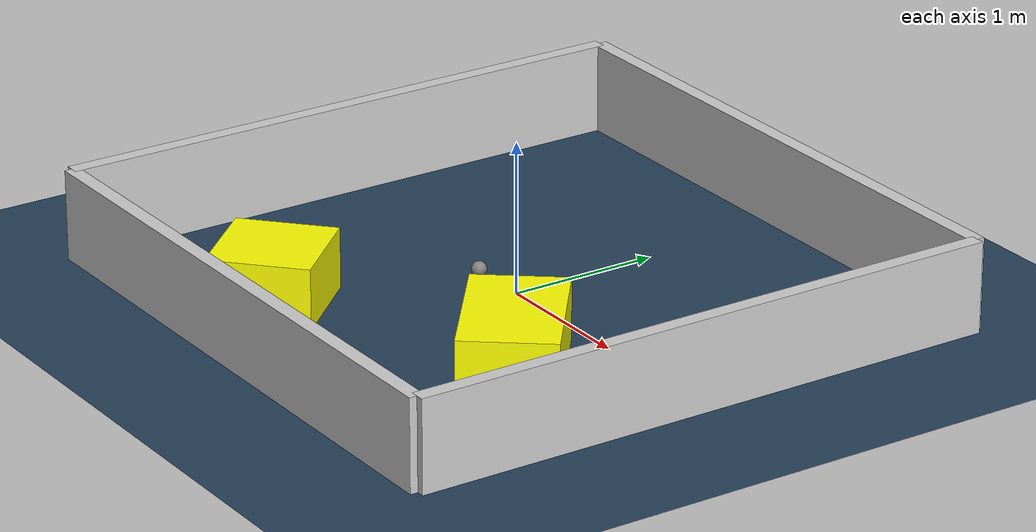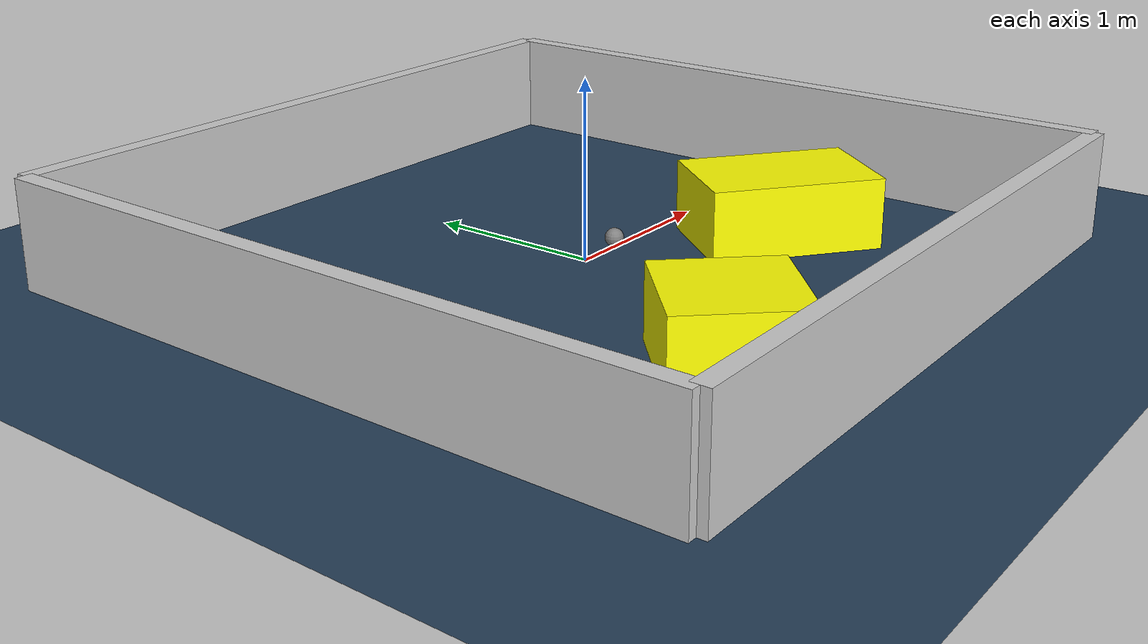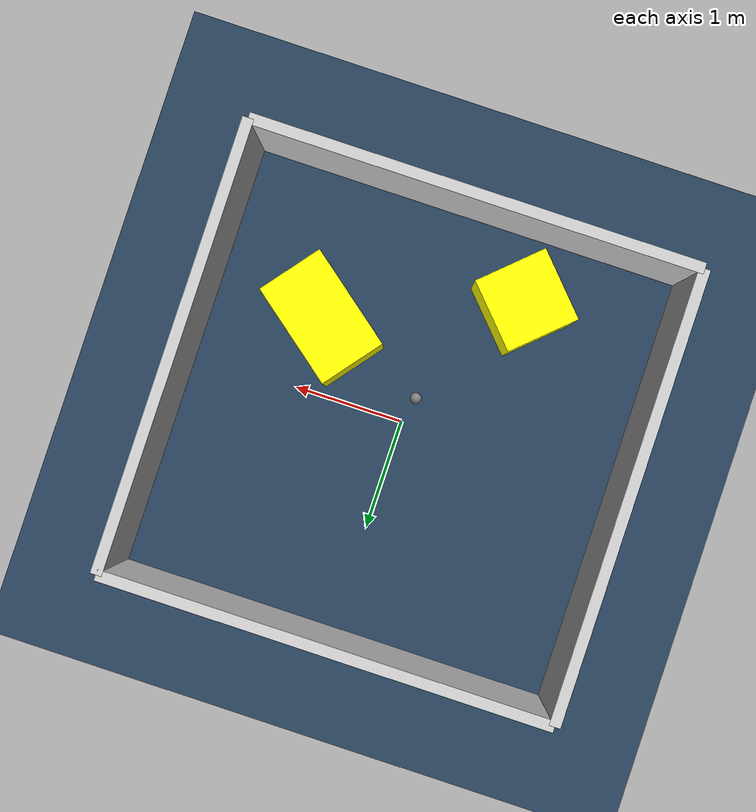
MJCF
<?xml version="1.0" ?>
<mujoco model="generated_environment">
  <option timestep="0.01" integrator="RK4" cone="elliptic"/>
  <default>
    <geom density="1"/>
  </default>
  <asset>
    <texture builtin="gradient" height="3072" rgb1="0.3 0.5 0.7" rgb2="0 0 0" type="skybox" width="512"/>
    <texture builtin="checker" height="300" mark="edge" markrgb="0.8 0.8 0.8" name="groundplane" rgb1="0.2 0.3 0.4" rgb2="0.1 0.2 0.3" type="2d" width="300"/>
    <material name="groundplane" reflectance="0.2" texrepeat="5 5" texture="groundplane" texuniform="true"/>
    <material name="robot" rgba="0.0 1.0 0.0 1"/>
  </asset>
  <worldbody>
    <light dir="0 0 -1" directional="true" pos="0 0 1.5"/>
    <geom condim="4" friction="1.0 0.005 0.001" material="groundplane" name="floor" size="0 0 0.05" type="plane"/>
    <body name="walls">
      <geom name="wall_1" condim="4" pos="-2.0 0.0 0.3" rgba="0.800000011920929 0.800000011920929 0.800000011920929 1.0" size="0.05 2.0 0.3" type="box"/>
      <geom name="wall_2" condim="4" pos="2.0 0.0 0.3" rgba="0.800000011920929 0.800000011920929 0.800000011920929 1.0" size="0.05 2.0 0.3" type="box"/>
      <geom name="wall_3" condim="4" pos="0.0 -2.0 0.3" rgba="0.800000011920929 0.800000011920929 0.800000011920929 1.0" size="2.0 0.05 0.3" type="box"/>
      <geom name="wall_4" condim="4" pos="0.0 2.0 0.3" rgba="0.800000011920929 0.800000011920929 0.800000011920929 1.0" size="2.0 0.05 0.3" type="box"/>
    </body>
    <body name="robot">
      <joint name="joint_x" type="slide" pos="0 0 0" axis="1 0 0"/>
      <joint name="joint_y" type="slide" pos="0 0 0" axis="0 1 0"/>
      <geom name="robot" type="sphere" pos="-0.05963660372506885 -0.2363397039052706 0.2" size="0.05" mass="5." friction="1.0 0.005 0.0001" condim="4"/>
      <site name="sensor_ball"/>
    </body>
    <body name="obstacle_1_movable">
      <geom name="obstacle_1_movable" condim="4" pos="-0.6966227311264201 -1.327852240593318 0.2" euler="0 0 222.93409692976823" friction="1.0 0.005 0.001" rgba="1 1 0 1" size="0.3339121574545903 0.33673043028328487 0.2" type="box" mass="0.1"/>
      <joint type="free"/>
    </body>
    <body name="obstacle_2_movable">
      <geom name="obstacle_2_movable" condim="4" pos="0.9332333327749573 -0.6400329741013362 0.2" euler="0 0 231.79123430967556" friction="1.0 0.005 0.001" rgba="1 1 0 1" size="0.3101053713889831 0.48802434908811654 0.2" type="box" mass="0.1"/>
      <joint type="free"/>
    </body>
  </worldbody>
  <actuator>
    <motor name="actuator_x" joint="joint_x" gear="1" ctrlrange="-1 1"/>
    <motor name="actuator_y" joint="joint_y" gear="1" ctrlrange="-1 1"/>
  </actuator>
</mujoco>
